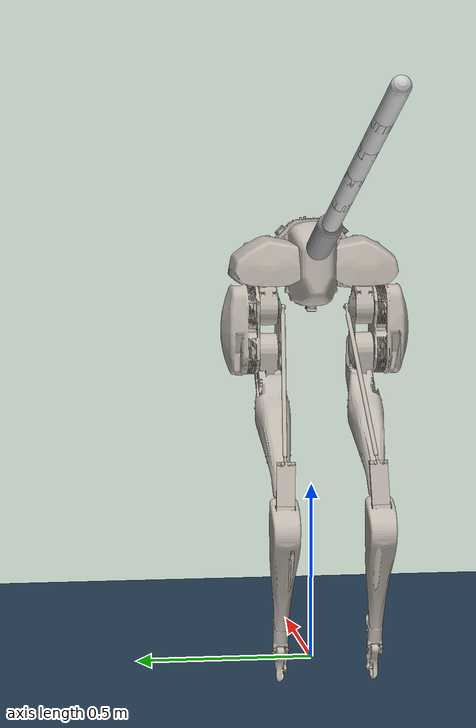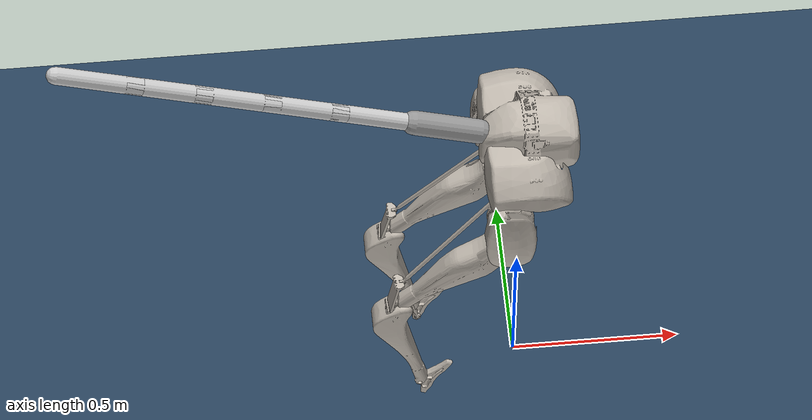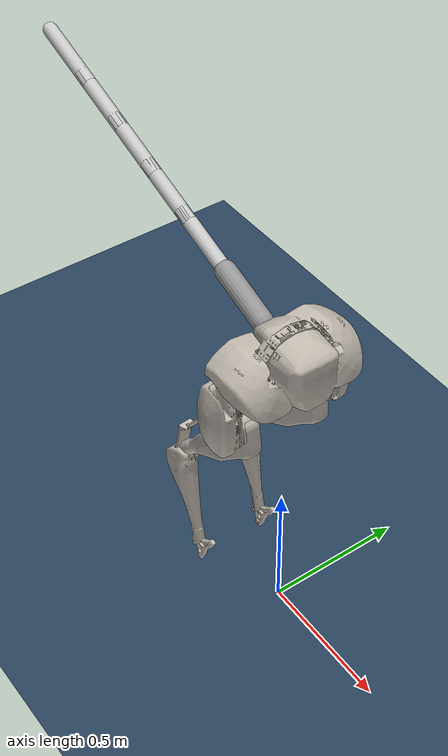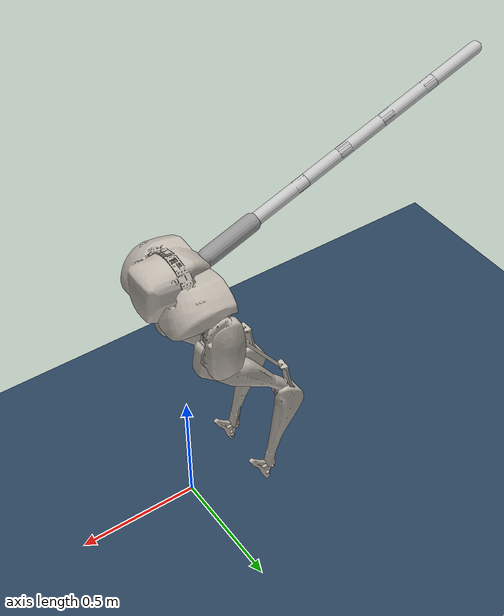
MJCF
<mujoco model="cassie scene">
  <include file="cassie_tail.xml"/>

  <statistic center="0 0 0.55" extent="1.1"/>

  <visual>
    <headlight diffuse="0.6 0.6 0.6" ambient="0.3 0.3 0.3" specular="0 0 0"/>
    <rgba haze="0.15 0.25 0.35 1"/>
    <global azimuth="150" elevation="-20"/>
  </visual>

  <asset>
    <texture type="skybox" builtin="gradient" rgb1="0.3 0.5 0.7" rgb2="0 0 0" width="512" height="3072"/>
    <texture type="2d" name="groundplane" builtin="checker" mark="edge" rgb1="0.2 0.3 0.4" rgb2="0.1 0.2 0.3"
      markrgb="0.8 0.8 0.8" width="300" height="300"/>
    <material name="groundplane" texture="groundplane" texuniform="true" texrepeat="5 5" reflectance="0.2"/>
  </asset>

  <worldbody>
    <light pos="0 0 3" dir="0 0 -1" directional="false"/>
    <geom name="floor" size="0 0 .125" type="plane" material="groundplane" conaffinity="15" condim="3"/>
  </worldbody>
</mujoco>

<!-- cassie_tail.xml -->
<mujoco model="cassie">
  <compiler eulerseq="zyx" meshdir="assets" texturedir="assets" autolimits="true"/>

  <option timestep="0.0005"/>
  <!-- Timestep is set to 0.0005 because the standard Cassie controller runs at 2 kHz -->
  <!-- Larger values still have stable dynamics -->

  <default>
    <geom contype="0" conaffinity="0" condim="1" solref="0.005 1"/>
    <equality solref="0.005 1"/>
    <default class="cassie">
      <geom material="cassie" group="2"/>
    </default>
    <default class="collision">
      <geom contype="1" group="3" type="capsule"/>
      <default class="collision-left">
        <geom contype="2" conaffinity="4"/>
      </default>
      <default class="collision-right">
        <geom contype="4" conaffinity="2"/>
      </default>
    </default>
  </default>

  <asset>
    <texture name="cassie" file="cassie-texture.png" type="2d"/>
    <material name="cassie" texture="cassie"/>
    <mesh name="cassie-pelvis" file="pelvis.obj"/>
    <mesh name="left-hip-roll" file="hip-roll.obj"/>
    <mesh name="left-hip-yaw" file="hip-yaw.obj"/>
    <mesh name="left-hip-pitch" file="hip-pitch.obj"/>
    <mesh name="left-achilles-rod" file="achilles-rod.obj"/>
    <mesh name="left-knee" file="knee.obj"/>
    <mesh name="left-knee-spring" file="knee-spring.obj"/>
    <mesh name="left-shin" file="shin.obj"/>
    <mesh name="left-tarsus" file="tarsus.obj"/>
    <mesh name="left-heel-spring" file="heel-spring.obj"/>
    <mesh name="left-foot-crank" file="foot-crank.obj"/>
    <mesh name="left-plantar-rod" file="plantar-rod.obj"/>
    <mesh name="left-foot" file="foot.obj"/>
    <mesh name="right-hip-roll" scale="1 -1 1" file="hip-roll.obj"/>
    <mesh name="right-hip-yaw" scale="1 -1 1" file="hip-yaw.obj"/>
    <mesh name="right-hip-pitch" scale="1 1 -1" file="hip-pitch.obj"/>
    <mesh name="right-achilles-rod" scale="1 1 -1" file="achilles-rod.obj"/>
    <mesh name="right-knee" scale="1 1 -1" file="knee.obj"/>
    <mesh name="right-knee-spring" scale="1 1 -1" file="knee-spring.obj"/>
    <mesh name="right-shin" scale="1 1 -1" file="shin.obj"/>
    <mesh name="right-tarsus" scale="1 1 -1" file="tarsus.obj"/>
    <mesh name="right-heel-spring" scale="1 1 -1" file="heel-spring.obj"/>
    <mesh name="right-foot-crank" scale="1 1 -1" file="foot-crank.obj"/>
    <mesh name="right-plantar-rod" scale="1 1 -1" file="plantar-rod.obj"/>
    <mesh name="right-foot" scale="1 1 -1" file="foot.obj"/>
  </asset>

  <worldbody>
    <light name="spotlight" mode="targetbodycom" target="cassie-pelvis" pos="0 -1 2"/>
    <body name="cassie-pelvis" pos="0 0 1.1" childclass="cassie">
      <camera name="track" pos="0 -3 1" zaxis="0 -1 0.5" mode="track"/>
      <inertial pos="0.05066 0.000346 0.02841" mass="10.33"
        fullinertia="0.085821 0.049222 0.08626 1.276e-05 -0.00016022 -0.000414"/>
      <freejoint/>
      <geom type="mesh" mesh="cassie-pelvis" euler="0 0 90"/>
      <geom type="ellipsoid" size="0.15 0.12 0.13" pos="0.03 0 0.03" class="collision"/>
      <geom size="0.095" fromto="-.04 0.14 .01 .02 0.14 .01" class="collision"/>
      <geom size="0.095" fromto="-.04 -.14 .01 .02 -.14 .01" class="collision"/>
      <site name="imu" size="0.01" pos="0.03155 0 -0.07996"/>

      <body name="tail_base" pos="-0.12 0 0.08" euler="0 20 0">
        <inertial pos="-0.1 0 0" mass="0.5" diaginertia="0.01 0.01 0.01"/>
        <joint name="tail_base_pitch" axis="0 1 0" range="-50 20" stiffness="20" damping="2"/>
        <joint name="tail_base_yaw"   axis="0 0 1" range="-40 40" stiffness="20" damping="2"/>
        <geom type="capsule" size="0.035" fromto="0 0 0 -0.2 0 0" rgba="0.6 0.6 0.6 1" group="1"/>

        <body name="tail_2" pos="-0.2 0 0">
          <inertial pos="-0.1 0 0" mass="0.3" diaginertia="0.01 0.01 0.01"/>
          <joint name="tail_2_pitch" axis="0 1 0" range="-40 40" stiffness="10" damping="1"/>
          <geom type="capsule" size="0.025" fromto="0 0 0 -0.25 0 0" rgba="0.8 0.8 0.8 1" group="1"/>

          <body name="tail_3" pos="-0.2 0 0">
            <inertial pos="-0.1 0 0" mass="0.3" diaginertia="0.01 0.01 0.01"/>
            <joint name="tail_3_pitch" axis="0 1 0" range="-40 40" stiffness="10" damping="1"/>
            <geom type="capsule" size="0.025" fromto="0 0 0 -0.25 0 0" rgba="0.8 0.8 0.8 1" group="1"/>

            <body name="tail_4" pos="-0.2 0 0">
              <inertial pos="-0.1 0 0" mass="0.3" diaginertia="0.01 0.01 0.01"/>
              <joint name="tail_4_pitch" axis="0 1 0" range="-40 40" stiffness="10" damping="1"/>
              <geom type="capsule" size="0.025" fromto="0 0 0 -0.25 0 0" rgba="0.8 0.8 0.8 1" group="1"/>

              <body name="tail_5" pos="-0.2 0 0">
                <inertial pos="-0.1 0 0" mass="0.3" diaginertia="0.01 0.01 0.01"/>
                <joint name="tail_5_pitch" axis="0 1 0" range="-40 40" stiffness="10" damping="1"/>
                <geom type="capsule" size="0.025" fromto="0 0 0 -0.25 0 0" rgba="0.8 0.8 0.8 1" group="1"/>

                <body name="tail_tip" pos="-0.2 0 0">
                  <inertial pos="-0.1 0 0" mass="0.3" diaginertia="0.01 0.01 0.01"/>
                  <joint name="tail_tip_pitch" axis="0 1 0" range="-40 40" stiffness="10" damping="1"/>
                  <geom type="capsule" size="0.025" fromto="0 0 0 -0.25 0 0" rgba="0.8 0.8 0.8 1" group="1"/>
                </body>
              </body>
            </body>
          </body>
        </body>
      </body>

      <body name="left-hip-roll" pos="0.021 0.135 0" xyaxes="0 0 -1 0 1 0">
        <inertial pos="-0.01793 0.0001 -0.04428" mass="1.82"
          fullinertia="0.003431 0.003793 0.002135 -6.65e-07 -0.00084 3.99e-06"/>
        <joint name="left-hip-roll" type="hinge" range="-15 22.5" damping="1" armature="0.038125"/>
        <geom type="mesh" mesh="left-hip-roll" euler="0 0 90"/>
        <body name="left-hip-yaw" pos="0 0 -0.07" xyaxes="0 0 1 0 1 0">
          <inertial pos="0 -1e-05 -0.034277" mass="1.171"
            fullinertia="0.002443 0.002803 0.000842 -4e-08 2.462e-07 -2.71e-08"/>
          <joint name="left-hip-yaw" type="hinge" range="-22.5 22.5" damping="1" armature="0.038125"/>
          <geom type="mesh" mesh="left-hip-yaw" euler="0 0 90"/>
          <body name="left-hip-pitch" pos="0 0 -0.09" xyaxes="0 0 -1 1 0 0">
            <inertial pos="0.05946 5e-05 -0.03581" mass="5.52"
              fullinertia="0.010898 0.029714 0.030257 -0.0002669 -5.721e-05 9.17e-06"/>
            <joint name="left-hip-pitch" type="hinge" range="-50 80" damping="1" armature="0.09344"/>
            <geom type="mesh" mesh="left-hip-pitch" euler="0 0 90"/>
            <geom size="0.08" fromto="0 0 -0.05 0.12 0 -0.05" class="collision"/>
            <body name="left-achilles-rod" pos="0 0 0.045" xyaxes="0.7922 -0.60599 -0.072096 0.60349 0.79547 -0.054922">
              <inertial pos="0.24719 0 0" mass="0.1567" fullinertia="3.754e-06 0.004487 0.004488 -3.74e-08 -1.61e-08 0"/>
              <joint name="left-achilles-rod" type="ball" damping="0.01"/>
              <geom type="mesh" mesh="left-achilles-rod" euler="0 0 90"/>
            </body>
            <body name="left-knee" pos="0.12 0 0.0045" xyaxes="0.70711 -0.70711 0 0.70711 0.70711 0">
              <inertial pos="0.023 0.03207 -0.002181" mass="0.7578"
                fullinertia="0.001376 0.0010335 0.0021637 -0.00039744 -4.085e-05 -5.374e-05"/>
              <joint name="left-knee" type="hinge" ref="-45" range="-164 -37" damping="1" armature="0.09344"/>
              <geom type="mesh" mesh="left-knee" euler="0 0 90"/>
              <body name="left-knee-spring" pos="0.06068 0.08241 0">
                <inertial pos="0.0836 0.0034 0" mass="0.186" fullinertia="5.215e-05 0.00041205 0.0003669 6.87e-06 0 0"/>
                <geom type="mesh" mesh="left-knee-spring" euler="0 0 90"/>
              </body>
              <body name="left-shin" pos="0.06068 0.04741 0">
                <inertial pos="0.18338 0.001169 0.0002123" mass="0.577"
                  fullinertia="0.00035939 0.014728 0.014707 -0.00020981 2.266e-05 -1.2e-07"/>
                <joint name="left-shin" type="hinge" range="-20 20" stiffness="1500" damping="0.1"/>
                <geom type="mesh" mesh="left-shin" euler="0 0 90"/>
                <geom size="0.04" fromto="-.06 0 0 0.17 -.01 0" class="collision-left"/>
                <geom size="0.027" fromto="0.17 -.023 0 0.38 0 0" class="collision-left"/>
                <geom size="0.025" fromto="-.045 .045 0 0.43476 0 0" class="collision-left"/>
                <body name="left-tarsus" pos="0.43476 0.02 0" xyaxes="0.52992 0.84805 0 -0.84805 0.52992 0">
                  <inertial pos="0.11046 -0.03058 -0.00131" mass="0.782"
                    fullinertia="0.00039238 0.013595 0.013674 0.00023651 -4.987e-05 -4.82e-06"/>
                  <joint name="left-tarsus" type="hinge" ref="58" range="50 170" damping="0.1"/>
                  <geom type="mesh" mesh="left-tarsus" euler="0 0 90"/>
                  <geom size="0.028" fromto=".01 -0.03059 0.00092 0.23 -0.04 0" class="collision-left"/>
                  <geom size="0.033" fromto=".04 -0.07 0.00092 0.208 -0.04 0" class="collision-left"/>
                  <geom size="0.02" fromto="0.208 -0.04 0 0.43 -0.04 0" class="collision-left"/>
                  <body name="left-heel-spring" pos="-0.01269 -0.03059 0.00092"
                    xyaxes="-0.91211 0.40829 0.036948 -0.40992 -0.90952 -0.068841">
                    <inertial pos="0.081 0.0022 0" mass="0.126"
                      fullinertia="2.959e-05 0.00022231 0.0002007 7.15e-06 -6e-07 1e-07"/>
                    <joint name="left-heel-spring" type="hinge" stiffness="1250"/>
                    <geom type="mesh" mesh="left-heel-spring" euler="0 0 90"/>
                  </body>
                  <body name="left-foot-crank" pos="0.058 -0.034 0.02275">
                    <inertial pos="0.00493 2e-05 -0.00215" mass="0.1261"
                      fullinertia="2.6941e-05 4.9621e-05 6.3362e-05 -2.1e-09 -3.9623e-06 -1.09e-08"/>
                    <joint name="left-foot-crank" type="hinge" range="-140 -30" damping="1"/>
                    <geom type="mesh" mesh="left-foot-crank" euler="0 0 90"/>
                    <body name="left-plantar-rod" pos="0.055 0 -0.00791">
                      <inertial pos="0.17792 0 0" mass="0.1186"
                        fullinertia="2.779e-06 0.001774 0.001775 -2.34e-08 -8.1e-09 0"/>
                      <joint name="left-plantar-rod" type="hinge"/>
                      <geom type="mesh" mesh="left-plantar-rod" euler="0 0 90"/>
                    </body>
                  </body>
                  <body name="left-foot" pos="0.408 -0.04 0">
                    <inertial pos="0.00474 0.02748 -0.00014" mass="0.1498"
                      fullinertia="0.00017388 0.00016793 0.00033261 0.00011814 1.36e-06 -4e-07"/>
                    <joint name="left-foot" type="hinge" range="-140 -30" damping="1" armature="0.01225"/>
                    <geom type="mesh" mesh="left-foot" euler="0 0 90"/>
                    <geom size="0.02" fromto="-0.052821 0.092622 0 0.069746 -0.010224 0" class="collision-left"/>
                  </body>
                </body>
              </body>
            </body>
          </body>
        </body>
      </body>
      <body name="right-hip-roll" pos="0.021 -0.135 0" xyaxes="0 0 -1 0 1 0">
        <inertial pos="-0.01793 0.0001 -0.04428" mass="1.82"
          fullinertia="0.003431 0.003793 0.002135 6.65e-07 -0.00084 -3.99e-06"/>
        <joint name="right-hip-roll" type="hinge" range="-22.5 15" damping="1" armature="0.038125"/>
        <geom type="mesh" mesh="right-hip-roll" euler="0 0 -90"/>
        <body name="right-hip-yaw" pos="0 0 -0.07" xyaxes="0 0 1 0 1 0">
          <inertial pos="0 1e-05 -0.034277" mass="1.171"
            fullinertia="0.002443 0.002803 0.000842 4e-08 2.462e-07 2.71e-08"/>
          <joint name="right-hip-yaw" type="hinge" range="-22.5 22.5" damping="1" armature="0.038125"/>
          <geom type="mesh" mesh="right-hip-yaw" euler="0 0 -90"/>
          <body name="right-hip-pitch" pos="0 0 -0.09" xyaxes="0 0 -1 1 0 0">
            <inertial pos="0.05946 5e-05 0.03581" mass="5.52"
              fullinertia="0.010898 0.029714 0.030257 -0.0002669 5.721e-05 -9.17e-06"/>
            <joint name="right-hip-pitch" type="hinge" range="-50 80" damping="1" armature="0.09344"/>
            <geom type="mesh" mesh="right-hip-pitch" euler="0 0 -90"/>
            <geom size="0.08" fromto="0 0 0.05 0.12 0 0.05" class="collision"/>
            <body name="right-achilles-rod" pos="0 0 -0.045" xyaxes="0.7922 -0.60599 0.072096 0.60349 0.79547 0.054922">
              <inertial pos="0.24719 0 0" mass="0.1567" fullinertia="3.754e-06 0.004487 0.004488 -3.74e-08 1.61e-08 0"/>
              <joint name="right-achilles-rod" type="ball" damping="0.01"/>
              <geom type="mesh" mesh="right-achilles-rod" euler="0 0 -90"/>
            </body>
            <body name="right-knee" pos="0.12 0 -0.0045" xyaxes="0.70711 -0.70711 0 0.70711 0.70711 0">
              <inertial pos="0.023 0.03207 0.002181" mass="0.7578"
                fullinertia="0.001376 0.0010335 0.0021637 -0.00039744 4.085e-05 5.374e-05"/>
              <joint name="right-knee" type="hinge" ref="-45" range="-164 -37" damping="1" armature="0.09344"/>
              <geom type="mesh" mesh="right-knee" euler="0 0 -90"/>
              <body name="right-knee-spring" pos="0.06068 0.08241 0">
                <inertial pos="0.0836 0.0034 0" mass="0.186" fullinertia="5.215e-05 0.00041205 0.0003669 6.87e-06 0 0"/>
                <geom type="mesh" mesh="right-knee-spring" euler="0 0 -90"/>
              </body>
              <body name="right-shin" pos="0.06068 0.04741 0">
                <inertial pos="0.18338 0.001169 -0.0002123" mass="0.577"
                  fullinertia="0.00035939 0.014728 0.014707 -0.00020981 -2.266e-05 1.2e-07"/>
                <joint name="right-shin" type="hinge" range="-20 20" stiffness="1500" damping="0.1"/>
                <geom type="mesh" mesh="right-shin" euler="0 0 -90"/>
                <geom size="0.04" fromto="-.06 0 0 0.17 -.01 0" class="collision-right"/>
                <geom size="0.027" fromto="0.17 -.023 0 0.38 0 0" class="collision-right"/>
                <geom size="0.025" fromto="-.045 .045 0 0.43476 0 0" class="collision-right"/>
                <body name="right-tarsus" pos="0.43476 0.02 0" xyaxes="0.52992 0.84805 0 -0.84805 0.52992 0">
                  <inertial pos="0.11046 -0.03058 0.00131" mass="0.782"
                    fullinertia="0.00039238 0.013595 0.013674 0.00023651 4.987e-05 4.82e-06"/>
                  <joint name="right-tarsus" type="hinge" ref="58" range="50 170" damping="0.1"/>
                  <geom type="mesh" mesh="right-tarsus" euler="0 0 -90"/>
                  <geom size="0.028" fromto=".01 -0.03059 0.00092 0.23 -0.04 0" class="collision-right"/>
                  <geom size="0.033" fromto=".04 -0.07 0.00092 0.208 -0.04 0" class="collision-right"/>
                  <geom size="0.02" fromto="0.208 -0.04 0 0.43 -0.04 0" class="collision-right"/>
                  <body name="right-heel-spring" pos="-0.01269 -0.03059 -0.00092"
                    xyaxes="-0.91211 0.40829 -0.036948 -0.40992 -0.90952 0.068841">
                    <inertial pos="0.081 0.0022 0" mass="0.126"
                      fullinertia="2.959e-05 0.00022231 0.0002007 7.15e-06 6e-07 -1e-07"/>
                    <joint name="right-heel-spring" type="hinge" stiffness="1250"/>
                    <geom type="mesh" mesh="right-heel-spring" euler="0 0 -90"/>
                  </body>
                  <body name="right-foot-crank" pos="0.058 -0.034 -0.02275">
                    <inertial pos="0.00493 2e-05 0.00215" mass="0.1261"
                      fullinertia="2.6941e-05 4.9621e-05 6.3362e-05 -2.1e-09 3.9623e-06 1.09e-08"/>
                    <joint name="right-foot-crank" type="hinge" range="-140 -30" damping="1"/>
                    <geom type="mesh" mesh="right-foot-crank" euler="0 0 -90"/>
                    <body name="right-plantar-rod" pos="0.055 0 0.00791">
                      <inertial pos="0.17792 0 0" mass="0.1186"
                        fullinertia="2.779e-06 0.001774 0.001775 -2.34e-08 8.1e-09 0"/>
                      <joint name="right-plantar-rod" type="hinge"/>
                      <geom type="mesh" mesh="right-plantar-rod" euler="0 0 -90"/>
                    </body>
                  </body>
                  <body name="right-foot" pos="0.408 -0.04 0">
                    <inertial pos="0.00474 0.02748 0.00014" mass="0.1498"
                      fullinertia="0.00017388 0.00016793 0.00033261 0.00011814 -1.36e-06 4e-07"/>
                    <joint name="right-foot" type="hinge" range="-140 -30" damping="1" armature="0.01225"/>
                    <geom type="mesh" mesh="right-foot" euler="0 0 -90"/>
                    <geom size="0.02" fromto="-0.052821 0.092622 0 0.069746 -0.010224 0" class="collision-right"/>
                  </body>
                </body>
              </body>
            </body>
          </body>
        </body>
      </body>
    </body>
  </worldbody>

  <equality>
    <connect body1="left-plantar-rod" body2="left-foot" anchor="0.35012 0 0"/>
    <connect body1="left-achilles-rod" body2="left-heel-spring" anchor="0.5012 0 0"/>
    <connect body1="right-plantar-rod" body2="right-foot" anchor="0.35012 0 0"/>
    <connect body1="right-achilles-rod" body2="right-heel-spring" anchor="0.5012 0 0"/>
  </equality>

  <actuator>
    <!-- User parameter is the maximum no-load motor RPM -->
    <motor name="left-hip-roll" joint="left-hip-roll" gear="25" ctrlrange="-4.5 4.5" user="2900"/>
    <motor name="left-hip-yaw" joint="left-hip-yaw" gear="25" ctrlrange="-4.5 4.5" user="2900"/>
    <motor name="left-hip-pitch" joint="left-hip-pitch" gear="16" ctrlrange="-12.2 12.2" user="1300"/>
    <motor name="left-knee" joint="left-knee" gear="16" ctrlrange="-12.2 12.2" user="1300"/>
    <motor name="left-foot" joint="left-foot" gear="50" ctrlrange="-0.9 0.9" user="5500"/>
    <motor name="right-hip-roll" joint="right-hip-roll" gear="25" ctrlrange="-4.5 4.5" user="2900"/>
    <motor name="right-hip-yaw" joint="right-hip-yaw" gear="25" ctrlrange="-4.5 4.5" user="2900"/>
    <motor name="right-hip-pitch" joint="right-hip-pitch" gear="16" ctrlrange="-12.2 12.2" user="1300"/>
    <motor name="right-knee" joint="right-knee" gear="16" ctrlrange="-12.2 12.2" user="1300"/>
    <motor name="right-foot" joint="right-foot" gear="50" ctrlrange="-0.9 0.9" user="5500"/>

    <!-- Tail actuators -->
    <motor name="tail_base_pitch" joint="tail_base_pitch" gear="10" ctrllimited="true" ctrlrange="-1 1"/>
    <motor name="tail_base_yaw"   joint="tail_base_yaw"   gear="10" ctrllimited="true" ctrlrange="-1 1"/>

  </actuator>

  <sensor>
    <!-- User parameter is the number of absolute encoder bits -->
    <actuatorpos name="left-hip-roll-input" actuator="left-hip-roll" user="13"/>
    <actuatorpos name="left-hip-yaw-input" actuator="left-hip-yaw" user="13"/>
    <actuatorpos name="left-hip-pitch-input" actuator="left-hip-pitch" user="13"/>
    <actuatorpos name="left-knee-input" actuator="left-knee" user="13"/>
    <actuatorpos name="left-foot-input" actuator="left-foot" user="18"/>

    <jointpos name="left-shin-output" joint="left-shin" user="18" noise="2e-4"/>
    <jointpos name="left-tarsus-output" joint="left-tarsus" user="18" noise="2e-4"/>
    <jointpos name="left-foot-output" joint="left-foot" user="13"/>

    <actuatorpos name="right-hip-roll-input" actuator="right-hip-roll" user="13"/>
    <actuatorpos name="right-hip-yaw-input" actuator="right-hip-yaw" user="13"/>
    <actuatorpos name="right-hip-pitch-input" actuator="right-hip-pitch" user="13"/>
    <actuatorpos name="right-knee-input" actuator="right-knee" user="13"/>
    <actuatorpos name="right-foot-input" actuator="right-foot" user="18"/>

    <jointpos name="right-shin-output" joint="right-shin" user="18" noise="2e-4"/>
    <jointpos name="right-tarsus-output" joint="right-tarsus" user="18" noise="2e-4"/>
    <jointpos name="right-foot-output" joint="right-foot" user="13"/>

    <framequat name="pelvis-orientation" objtype="site" objname="imu"/>
    <gyro name="pelvis-angular-velocity" site="imu" noise="5e-4" cutoff="34.9"/>
    <accelerometer name="pelvis-linear-acceleration" site="imu" noise="1e-2" cutoff="157"/>
    <magnetometer name="pelvis-magnetometer" site="imu"/>
  </sensor>

  <keyframe>
    <key name="home"
      qpos="0 0 1.0059301 1 0 0 0 0.00449956 0 0.497301 0.97861 -0.0164104 0.0177766
        -0.204298 -1.1997 0 1.42671 -2.25907e-06 -1.52439 1.50645 -1.59681 -0.00449956 0 0.497301
        0.97874 0.0038687 -0.0151572 -0.204509 -1.1997 0 1.42671 0 -1.52439 1.50645 -1.59681"/>
  </keyframe>
</mujoco>
